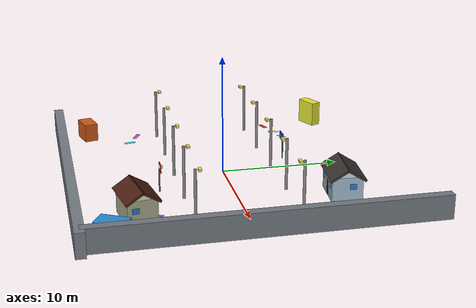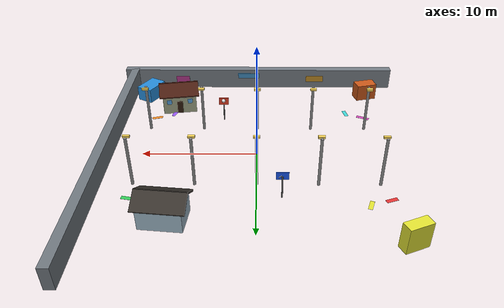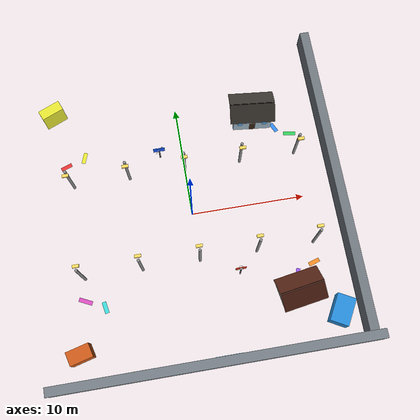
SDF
<sdf version="1.9">
 <world name="uav_gnc_lio_px4">
  <model name="east_wall">
   <static>true</static>
   <pose>13 1 1.0 0 0 1.5708</pose>
   <link name="link">
    <collision name="collision"><geometry><box><size>28 0.8 2.0</size></box></geometry></collision>
    <visual name="visual">
     <geometry><box><size>28 0.8 2.0</size></box></geometry>
     <material><ambient>0.44 0.47 0.50 1</ambient><diffuse>0.44 0.47 0.50 1</diffuse></material>
    </visual>
   </link>
  </model>
  <model name="south_wall">
   <static>true</static>
   <pose>0 -13 1.0 0 0 0</pose>
   <link name="link">
    <collision name="collision"><geometry><box><size>28 0.8 2.0</size></box></geometry></collision>
    <visual name="visual">
     <geometry><box><size>28 0.8 2.0</size></box></geometry>
     <material><ambient>0.46 0.49 0.52 1</ambient><diffuse>0.46 0.49 0.52 1</diffuse></material>
    </visual>
    <visual name="panel_0">
     <pose>-6 0.41 0.00 0 0 0</pose>
     <geometry><box><size>1.8 0.04 0.65</size></box></geometry>
     <material><ambient>0.75 0.55 0.15 1</ambient><diffuse>0.75 0.55 0.15 1</diffuse></material>
    </visual>
    <visual name="panel_1">
     <pose>1 0.41 0.35 0 0 0</pose>
     <geometry><box><size>2.2 0.04 0.55</size></box></geometry>
     <material><ambient>0.25 0.55 0.75 1</ambient><diffuse>0.25 0.55 0.75 1</diffuse></material>
    </visual>
    <visual name="panel_2">
     <pose>8 0.41 -0.10 0 0 0</pose>
     <geometry><box><size>1.4 0.04 0.75</size></box></geometry>
     <material><ambient>0.70 0.22 0.55 1</ambient><diffuse>0.70 0.22 0.55 1</diffuse></material>
    </visual>
   </link>
  </model>
  <model name="feature_boxes">
   <static>true</static>
   <link name="link">
    <collision name="box_0_col">
     <pose>-11.0 -10.5 0.8 0 0 0.25</pose>
     <geometry><box><size>2.0 1.2 1.6</size></box></geometry>
    </collision>
    <visual name="box_0_vis">
     <pose>-11.0 -10.5 0.8 0 0 0.25</pose>
     <geometry><box><size>2.0 1.2 1.6</size></box></geometry>
     <material><ambient>0.8 0.35 0.1 1</ambient><diffuse>0.8 0.35 0.1 1</diffuse></material>
    </visual>
    <collision name="box_1_col">
     <pose>11.0 -10.5 0.7 0 0 -0.5</pose>
     <geometry><box><size>1.6 2.4 1.4</size></box></geometry>
    </collision>
    <visual name="box_1_vis">
     <pose>11.0 -10.5 0.7 0 0 -0.5</pose>
     <geometry><box><size>1.6 2.4 1.4</size></box></geometry>
     <material><ambient>0.15 0.55 0.85 1</ambient><diffuse>0.15 0.55 0.85 1</diffuse></material>
    </visual>
    <collision name="box_2_col">
     <pose>-11.0 11.0 1.1 0 0 0.4</pose>
     <geometry><box><size>2.0 0.9 2.2</size></box></geometry>
    </collision>
    <visual name="box_2_vis">
     <pose>-11.0 11.0 1.1 0 0 0.4</pose>
     <geometry><box><size>2.0 0.9 2.2</size></box></geometry>
     <material><ambient>0.9 0.9 0.2 1</ambient><diffuse>0.9 0.9 0.2 1</diffuse></material>
    </visual>
   </link>
  </model>
  <model name="roadside_house_1">
   <static>true</static>
   <pose>6.8 8.4 0 0 0 -0.10</pose>
   <link name="link">
    <collision name="body_col">
     <pose>0 0 1.0 0 0 0</pose>
     <geometry><box><size>3.4 2.5 2.0</size></box></geometry>
    </collision>
    <visual name="body_vis">
     <pose>0 0 1.0 0 0 0</pose>
     <geometry><box><size>3.4 2.5 2.0</size></box></geometry>
     <material><ambient>0.62 0.72 0.78 1</ambient><diffuse>0.62 0.72 0.78 1</diffuse></material>
    </visual>
    <visual name="roof_left_vis">
     <pose>0 -0.68 2.25 0.55 0 0</pose>
     <geometry><box><size>4.0 1.75 0.18</size></box></geometry>
     <material><ambient>0.22 0.20 0.18 1</ambient><diffuse>0.22 0.20 0.18 1</diffuse></material>
    </visual>
    <visual name="roof_right_vis">
     <pose>0 0.68 2.25 -0.55 0 0</pose>
     <geometry><box><size>4.0 1.75 0.18</size></box></geometry>
     <material><ambient>0.22 0.20 0.18 1</ambient><diffuse>0.22 0.20 0.18 1</diffuse></material>
    </visual>
    <visual name="door_vis">
     <pose>0 -1.26 0.65 0 0 0</pose>
     <geometry><box><size>0.55 0.03 1.25</size></box></geometry>
     <material><ambient>0.20 0.12 0.06 1</ambient><diffuse>0.20 0.12 0.06 1</diffuse></material>
    </visual>
    <visual name="window_l_vis">
     <pose>-1.1 -1.27 1.25 0 0 0</pose>
     <geometry><box><size>0.45 0.02 0.45</size></box></geometry>
     <material><ambient>0.35 0.65 0.90 1</ambient><diffuse>0.35 0.65 0.90 1</diffuse></material>
    </visual>
    <visual name="window_r_vis">
     <pose>1.1 -1.27 1.25 0 0 0</pose>
     <geometry><box><size>0.45 0.02 0.45</size></box></geometry>
     <material><ambient>0.35 0.65 0.90 1</ambient><diffuse>0.35 0.65 0.90 1</diffuse></material>
    </visual>
    <visual name="side_window_vis">
     <pose>1.71 0.45 1.25 0 0 0</pose>
     <geometry><box><size>0.03 0.55 0.45</size></box></geometry>
     <material><ambient>0.18 0.45 0.80 1</ambient><diffuse>0.18 0.45 0.80 1</diffuse></material>
    </visual>
    <visual name="house_number_vis">
     <pose>-0.65 -1.275 1.75 0 0 0</pose>
     <geometry><box><size>0.42 0.02 0.22</size></box></geometry>
     <material><ambient>0.95 0.95 0.95 1</ambient><diffuse>0.95 0.95 0.95 1</diffuse></material>
    </visual>
   </link>
  </model>
  <model name="roadside_house_3">
   <static>true</static>
   <pose>7.8 -8.3 0 0 0 0.16</pose>
   <link name="link">
    <collision name="body_col">
     <pose>0 0 1.0 0 0 0</pose>
     <geometry><box><size>3.2 2.4 2.0</size></box></geometry>
    </collision>
    <visual name="body_vis">
     <pose>0 0 1.0 0 0 0</pose>
     <geometry><box><size>3.2 2.4 2.0</size></box></geometry>
     <material><ambient>0.64 0.66 0.54 1</ambient><diffuse>0.64 0.66 0.54 1</diffuse></material>
    </visual>
    <visual name="roof_left_vis">
     <pose>0 -0.65 2.25 0.55 0 0</pose>
     <geometry><box><size>3.8 1.7 0.18</size></box></geometry>
     <material><ambient>0.30 0.12 0.07 1</ambient><diffuse>0.30 0.12 0.07 1</diffuse></material>
    </visual>
    <visual name="roof_right_vis">
     <pose>0 0.65 2.25 -0.55 0 0</pose>
     <geometry><box><size>3.8 1.7 0.18</size></box></geometry>
     <material><ambient>0.30 0.12 0.07 1</ambient><diffuse>0.30 0.12 0.07 1</diffuse></material>
    </visual>
    <visual name="door_vis">
     <pose>0 1.21 0.65 0 0 0</pose>
     <geometry><box><size>0.55 0.03 1.25</size></box></geometry>
     <material><ambient>0.20 0.12 0.06 1</ambient><diffuse>0.20 0.12 0.06 1</diffuse></material>
    </visual>
    <visual name="window_l_vis">
     <pose>-1.0 1.22 1.25 0 0 0</pose>
     <geometry><box><size>0.45 0.02 0.45</size></box></geometry>
     <material><ambient>0.35 0.65 0.90 1</ambient><diffuse>0.35 0.65 0.90 1</diffuse></material>
    </visual>
    <visual name="window_r_vis">
     <pose>1.0 1.22 1.25 0 0 0</pose>
     <geometry><box><size>0.45 0.02 0.45</size></box></geometry>
     <material><ambient>0.35 0.65 0.90 1</ambient><diffuse>0.35 0.65 0.90 1</diffuse></material>
    </visual>
    <visual name="side_window_vis">
     <pose>1.61 -0.55 1.2 0 0 0</pose>
     <geometry><box><size>0.03 0.55 0.45</size></box></geometry>
     <material><ambient>0.18 0.45 0.80 1</ambient><diffuse>0.18 0.45 0.80 1</diffuse></material>
    </visual>
    <visual name="house_number_vis">
     <pose>-0.65 1.225 1.75 0 0 0</pose>
     <geometry><box><size>0.42 0.02 0.22</size></box></geometry>
     <material><ambient>0.95 0.95 0.95 1</ambient><diffuse>0.95 0.95 0.95 1</diffuse></material>
    </visual>
   </link>
  </model>
  <model name="vio_ground_markers">
   <static>true</static>
   <link name="link">
    <visual name="marker_0">
     <pose>-10.5 6.2 0.085 0 0 0.35</pose>
     <geometry><box><size>1.0 0.35 0.01</size></box></geometry>
     <material><ambient>0.90 0.20 0.20 1</ambient><diffuse>0.90 0.20 0.20 1</diffuse></material>
    </visual>
    <visual name="marker_1">
     <pose>-8.8 6.8 0.086 0 0 -0.35</pose>
     <geometry><box><size>0.35 1.0 0.01</size></box></geometry>
     <material><ambient>0.90 0.90 0.20 1</ambient><diffuse>0.90 0.90 0.20 1</diffuse></material>
    </visual>
    <visual name="marker_2">
     <pose>10.0 6.1 0.085 0 0 -0.2</pose>
     <geometry><box><size>1.1 0.35 0.01</size></box></geometry>
     <material><ambient>0.20 0.80 0.35 1</ambient><diffuse>0.20 0.80 0.35 1</diffuse></material>
    </visual>
    <visual name="marker_3">
     <pose>8.7 6.9 0.086 0 0 0.45</pose>
     <geometry><box><size>0.35 0.9 0.01</size></box></geometry>
     <material><ambient>0.20 0.55 0.95 1</ambient><diffuse>0.20 0.55 0.95 1</diffuse></material>
    </visual>
    <visual name="marker_4">
     <pose>-10.2 -6.1 0.085 0 0 -0.45</pose>
     <geometry><box><size>1.2 0.35 0.01</size></box></geometry>
     <material><ambient>0.85 0.30 0.75 1</ambient><diffuse>0.85 0.30 0.75 1</diffuse></material>
    </visual>
    <visual name="marker_5">
     <pose>-8.6 -6.9 0.086 0 0 0.2</pose>
     <geometry><box><size>0.35 1.0 0.01</size></box></geometry>
     <material><ambient>0.25 0.85 0.85 1</ambient><diffuse>0.25 0.85 0.85 1</diffuse></material>
    </visual>
    <visual name="marker_6">
     <pose>9.7 -6.0 0.085 0 0 0.3</pose>
     <geometry><box><size>1.0 0.35 0.01</size></box></geometry>
     <material><ambient>0.95 0.55 0.15 1</ambient><diffuse>0.95 0.55 0.15 1</diffuse></material>
    </visual>
    <visual name="marker_7">
     <pose>8.1 -6.8 0.086 0 0 -0.3</pose>
     <geometry><box><size>0.35 1.0 0.01</size></box></geometry>
     <material><ambient>0.60 0.35 0.95 1</ambient><diffuse>0.60 0.35 0.95 1</diffuse></material>
    </visual>
   </link>
  </model>
  <model name="vio_sign_boards">
   <static>true</static>
   <link name="link">
    <collision name="sign_0_post_col">
     <pose>-2.0 5.8 1.0 0 0 0</pose>
     <geometry><cylinder><radius>0.06</radius><length>2.0</length></cylinder></geometry>
    </collision>
    <visual name="sign_0_post_vis">
     <pose>-2.0 5.8 1.0 0 0 0</pose>
     <geometry><cylinder><radius>0.06</radius><length>2.0</length></cylinder></geometry>
     <material><ambient>0.35 0.35 0.35 1</ambient><diffuse>0.35 0.35 0.35 1</diffuse></material>
    </visual>
    <visual name="sign_0_board_vis">
     <pose>-2.0 5.72 2.05 0 0 0</pose>
     <geometry><box><size>1.0 0.06 0.65</size></box></geometry>
     <material><ambient>0.10 0.35 0.95 1</ambient><diffuse>0.10 0.35 0.95 1</diffuse></material>
    </visual>
    <visual name="sign_0_bar_vis">
     <pose>-2.0 5.68 2.05 0 0 0.785</pose>
     <geometry><box><size>0.85 0.04 0.05</size></box></geometry>
     <material><ambient>0.95 0.95 0.95 1</ambient><diffuse>0.95 0.95 0.95 1</diffuse></material>
    </visual>
    <collision name="sign_1_post_col">
     <pose>3.2 -5.9 1.0 0 0 0</pose>
     <geometry><cylinder><radius>0.06</radius><length>2.0</length></cylinder></geometry>
    </collision>
    <visual name="sign_1_post_vis">
     <pose>3.2 -5.9 1.0 0 0 0</pose>
     <geometry><cylinder><radius>0.06</radius><length>2.0</length></cylinder></geometry>
     <material><ambient>0.35 0.35 0.35 1</ambient><diffuse>0.35 0.35 0.35 1</diffuse></material>
    </visual>
    <visual name="sign_1_board_vis">
     <pose>3.2 -5.82 2.05 0 0 0</pose>
     <geometry><box><size>0.9 0.06 0.7</size></box></geometry>
     <material><ambient>0.90 0.25 0.15 1</ambient><diffuse>0.90 0.25 0.15 1</diffuse></material>
    </visual>
    <visual name="sign_1_dot_vis">
     <pose>3.2 -5.78 2.1 0 0 0</pose>
     <geometry><sphere><radius>0.18</radius></sphere></geometry>
     <material><ambient>0.95 0.95 0.95 1</ambient><diffuse>0.95 0.95 0.95 1</diffuse></material>
    </visual>
   </link>
  </model>
  <model name="feature_poles">
   <static>true</static>
   <link name="link">
    <collision name="pole_n0_col">
     <pose>-10 4.2 2.2 0 0 0</pose>
     <geometry><cylinder><radius>0.12</radius><length>4.4</length></cylinder></geometry>
    </collision>
    <visual name="pole_n0_vis">
     <pose>-10 4.2 2.2 0 0 0</pose>
     <geometry><cylinder><radius>0.12</radius><length>4.4</length></cylinder></geometry>
     <material><ambient>0.55 0.55 0.55 1</ambient><diffuse>0.55 0.55 0.55 1</diffuse></material>
    </visual>
    <visual name="lamp_n0_vis">
     <pose>-10 3.85 4.35 0 0 0</pose>
     <geometry><box><size>0.55 0.25 0.18</size></box></geometry>
     <material><ambient>1.0 0.85 0.35 1</ambient><diffuse>1.0 0.85 0.35 1</diffuse></material>
    </visual>
    <collision name="pole_n1_col">
     <pose>-5 4.2 2.2 0 0 0</pose>
     <geometry><cylinder><radius>0.12</radius><length>4.4</length></cylinder></geometry>
    </collision>
    <visual name="pole_n1_vis">
     <pose>-5 4.2 2.2 0 0 0</pose>
     <geometry><cylinder><radius>0.12</radius><length>4.4</length></cylinder></geometry>
     <material><ambient>0.55 0.55 0.55 1</ambient><diffuse>0.55 0.55 0.55 1</diffuse></material>
    </visual>
    <visual name="lamp_n1_vis">
     <pose>-5 3.85 4.35 0 0 0</pose>
     <geometry><box><size>0.55 0.25 0.18</size></box></geometry>
     <material><ambient>1.0 0.85 0.35 1</ambient><diffuse>1.0 0.85 0.35 1</diffuse></material>
    </visual>
    <collision name="pole_n2_col">
     <pose>0 4.2 2.2 0 0 0</pose>
     <geometry><cylinder><radius>0.12</radius><length>4.4</length></cylinder></geometry>
    </collision>
    <visual name="pole_n2_vis">
     <pose>0 4.2 2.2 0 0 0</pose>
     <geometry><cylinder><radius>0.12</radius><length>4.4</length></cylinder></geometry>
     <material><ambient>0.55 0.55 0.55 1</ambient><diffuse>0.55 0.55 0.55 1</diffuse></material>
    </visual>
    <visual name="lamp_n2_vis">
     <pose>0 3.85 4.35 0 0 0</pose>
     <geometry><box><size>0.55 0.25 0.18</size></box></geometry>
     <material><ambient>1.0 0.85 0.35 1</ambient><diffuse>1.0 0.85 0.35 1</diffuse></material>
    </visual>
    <collision name="pole_n3_col">
     <pose>5 4.2 2.2 0 0 0</pose>
     <geometry><cylinder><radius>0.12</radius><length>4.4</length></cylinder></geometry>
    </collision>
    <visual name="pole_n3_vis">
     <pose>5 4.2 2.2 0 0 0</pose>
     <geometry><cylinder><radius>0.12</radius><length>4.4</length></cylinder></geometry>
     <material><ambient>0.55 0.55 0.55 1</ambient><diffuse>0.55 0.55 0.55 1</diffuse></material>
    </visual>
    <visual name="lamp_n3_vis">
     <pose>5 3.85 4.35 0 0 0</pose>
     <geometry><box><size>0.55 0.25 0.18</size></box></geometry>
     <material><ambient>1.0 0.85 0.35 1</ambient><diffuse>1.0 0.85 0.35 1</diffuse></material>
    </visual>
    <collision name="pole_n4_col">
     <pose>10 4.2 2.2 0 0 0</pose>
     <geometry><cylinder><radius>0.12</radius><length>4.4</length></cylinder></geometry>
    </collision>
    <visual name="pole_n4_vis">
     <pose>10 4.2 2.2 0 0 0</pose>
     <geometry><cylinder><radius>0.12</radius><length>4.4</length></cylinder></geometry>
     <material><ambient>0.55 0.55 0.55 1</ambient><diffuse>0.55 0.55 0.55 1</diffuse></material>
    </visual>
    <visual name="lamp_n4_vis">
     <pose>10 3.85 4.35 0 0 0</pose>
     <geometry><box><size>0.55 0.25 0.18</size></box></geometry>
     <material><ambient>1.0 0.85 0.35 1</ambient><diffuse>1.0 0.85 0.35 1</diffuse></material>
    </visual>
    <collision name="pole_s0_col">
     <pose>-10 -4.2 2.2 0 0 0</pose>
     <geometry><cylinder><radius>0.12</radius><length>4.4</length></cylinder></geometry>
    </collision>
    <visual name="pole_s0_vis">
     <pose>-10 -4.2 2.2 0 0 0</pose>
     <geometry><cylinder><radius>0.12</radius><length>4.4</length></cylinder></geometry>
     <material><ambient>0.55 0.55 0.55 1</ambient><diffuse>0.55 0.55 0.55 1</diffuse></material>
    </visual>
    <visual name="lamp_s0_vis">
     <pose>-10 -3.85 4.35 0 0 0</pose>
     <geometry><box><size>0.55 0.25 0.18</size></box></geometry>
     <material><ambient>1.0 0.85 0.35 1</ambient><diffuse>1.0 0.85 0.35 1</diffuse></material>
    </visual>
    <collision name="pole_s1_col">
     <pose>-5 -4.2 2.2 0 0 0</pose>
     <geometry><cylinder><radius>0.12</radius><length>4.4</length></cylinder></geometry>
    </collision>
    <visual name="pole_s1_vis">
     <pose>-5 -4.2 2.2 0 0 0</pose>
     <geometry><cylinder><radius>0.12</radius><length>4.4</length></cylinder></geometry>
     <material><ambient>0.55 0.55 0.55 1</ambient><diffuse>0.55 0.55 0.55 1</diffuse></material>
    </visual>
    <visual name="lamp_s1_vis">
     <pose>-5 -3.85 4.35 0 0 0</pose>
     <geometry><box><size>0.55 0.25 0.18</size></box></geometry>
     <material><ambient>1.0 0.85 0.35 1</ambient><diffuse>1.0 0.85 0.35 1</diffuse></material>
    </visual>
    <collision name="pole_s2_col">
     <pose>0 -4.2 2.2 0 0 0</pose>
     <geometry><cylinder><radius>0.12</radius><length>4.4</length></cylinder></geometry>
    </collision>
    <visual name="pole_s2_vis">
     <pose>0 -4.2 2.2 0 0 0</pose>
     <geometry><cylinder><radius>0.12</radius><length>4.4</length></cylinder></geometry>
     <material><ambient>0.55 0.55 0.55 1</ambient><diffuse>0.55 0.55 0.55 1</diffuse></material>
    </visual>
    <visual name="lamp_s2_vis">
     <pose>0 -3.85 4.35 0 0 0</pose>
     <geometry><box><size>0.55 0.25 0.18</size></box></geometry>
     <material><ambient>1.0 0.85 0.35 1</ambient><diffuse>1.0 0.85 0.35 1</diffuse></material>
    </visual>
    <collision name="pole_s3_col">
     <pose>5 -4.2 2.2 0 0 0</pose>
     <geometry><cylinder><radius>0.12</radius><length>4.4</length></cylinder></geometry>
    </collision>
    <visual name="pole_s3_vis">
     <pose>5 -4.2 2.2 0 0 0</pose>
     <geometry><cylinder><radius>0.12</radius><length>4.4</length></cylinder></geometry>
     <material><ambient>0.55 0.55 0.55 1</ambient><diffuse>0.55 0.55 0.55 1</diffuse></material>
    </visual>
    <visual name="lamp_s3_vis">
     <pose>5 -3.85 4.35 0 0 0</pose>
     <geometry><box><size>0.55 0.25 0.18</size></box></geometry>
     <material><ambient>1.0 0.85 0.35 1</ambient><diffuse>1.0 0.85 0.35 1</diffuse></material>
    </visual>
    <collision name="pole_s4_col">
     <pose>10 -4.2 2.2 0 0 0</pose>
     <geometry><cylinder><radius>0.12</radius><length>4.4</length></cylinder></geometry>
    </collision>
    <visual name="pole_s4_vis">
     <pose>10 -4.2 2.2 0 0 0</pose>
     <geometry><cylinder><radius>0.12</radius><length>4.4</length></cylinder></geometry>
     <material><ambient>0.55 0.55 0.55 1</ambient><diffuse>0.55 0.55 0.55 1</diffuse></material>
    </visual>
    <visual name="lamp_s4_vis">
     <pose>10 -3.85 4.35 0 0 0</pose>
     <geometry><box><size>0.55 0.25 0.18</size></box></geometry>
     <material><ambient>1.0 0.85 0.35 1</ambient><diffuse>1.0 0.85 0.35 1</diffuse></material>
    </visual>
   </link>
  </model>
 </world>
</sdf>
